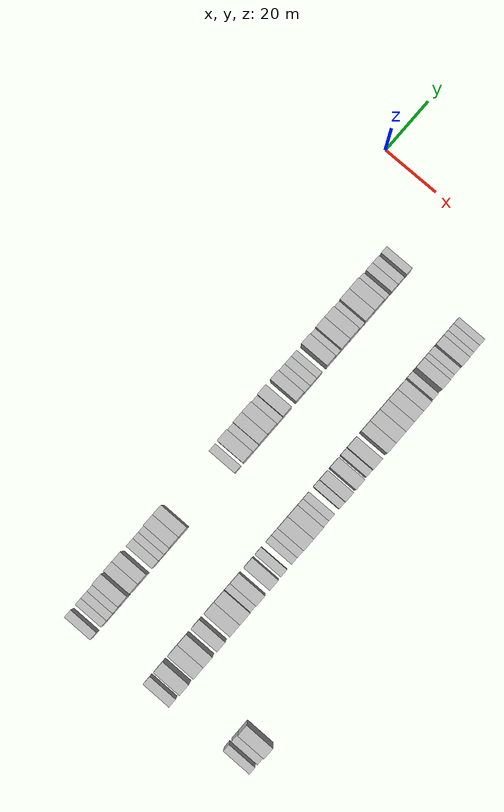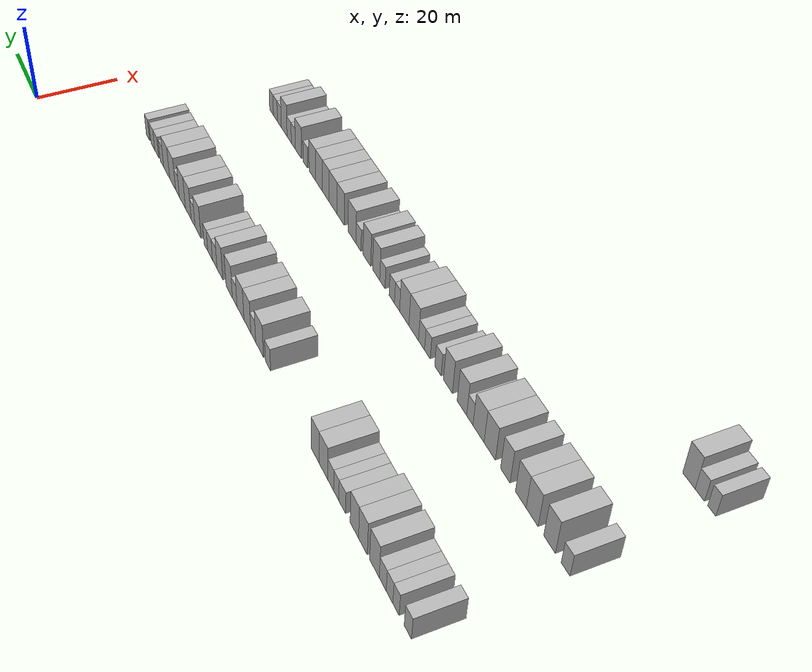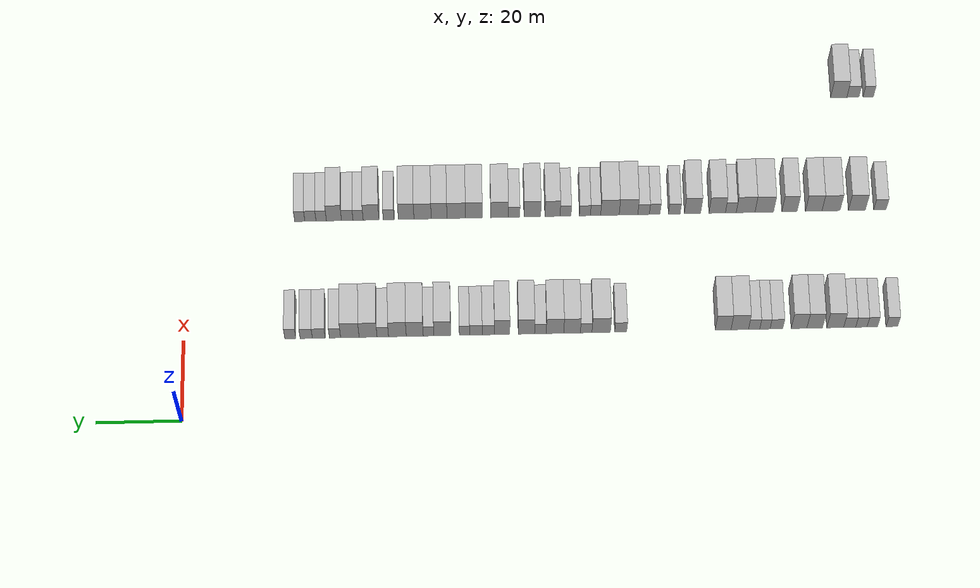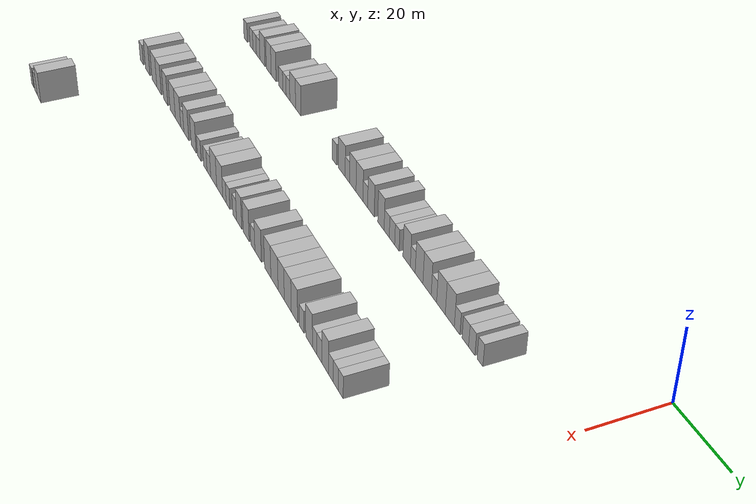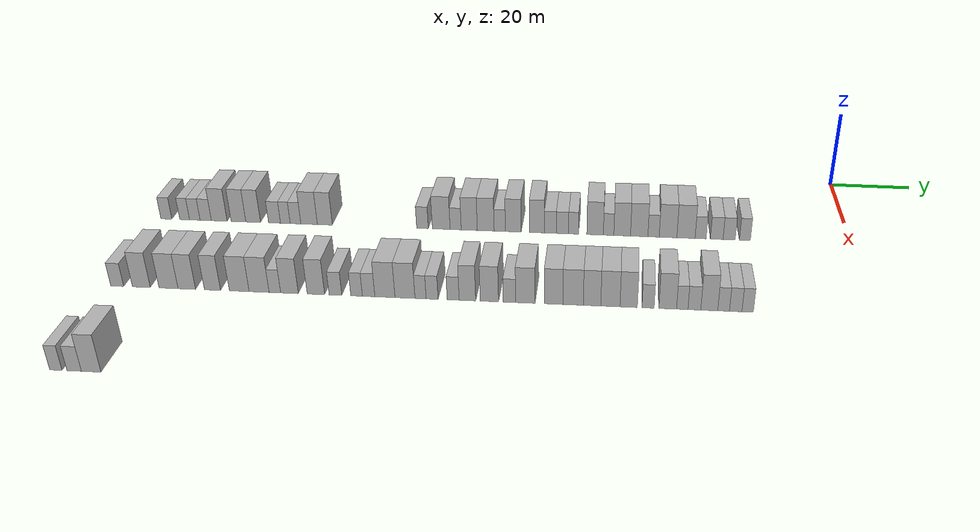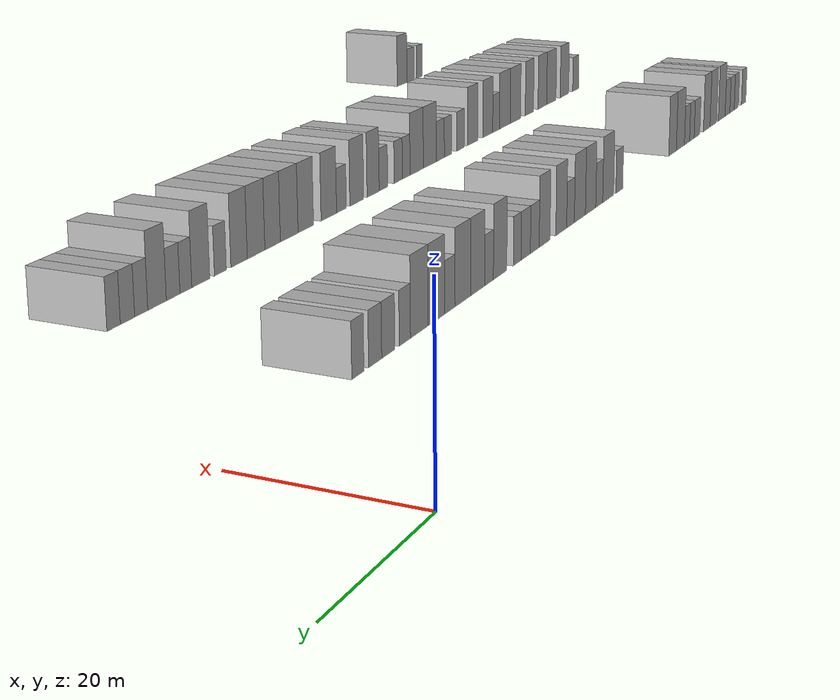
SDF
<sdf version="1.6">
 <world name="default">
  <model name="building_72">
   <static>1</static>
   <pose>25.0000 -166.5571 0 0.000000 0.000000 0.000000</pose>
   <link name="link">
    <pose>0 0 3.00 0 0 0</pose>
    <collision name="collision"><geometry><box><size>10.0000 2.7716 6.0000</size></box></geometry></collision>
    <visual name="visual">
     <cast_shadows>0</cast_shadows>
     <geometry><box><size>10.0000 2.7716 6.0000</size></box></geometry>
     <material>
      <script>
       <uri>model://HANNAS_wall/materials/scripts</uri>
       <uri>model://HANNAS_wall/materials/textures</uri>
       <name>vrc/HANNAS_wall</name>
      </script>
     </material>
    </visual>
   </link>
  </model>
  <model name="building_73">
   <static>1</static>
   <pose>25.0000 -161.9348 0 0.000000 0.000000 0.000000</pose>
   <link name="link">
    <pose>0 0 3.00 0 0 0</pose>
    <collision name="collision"><geometry><box><size>10.0000 2.4730 6.0000</size></box></geometry></collision>
    <visual name="visual">
     <cast_shadows>0</cast_shadows>
     <geometry><box><size>10.0000 2.4730 6.0000</size></box></geometry>
     <material>
      <script>
       <uri>model://HANNAS_wall/materials/scripts</uri>
       <uri>model://HANNAS_wall/materials/textures</uri>
       <name>vrc/HANNAS_wall</name>
      </script>
     </material>
    </visual>
   </link>
  </model>
  <model name="building_74">
   <static>1</static>
   <pose>25.0000 -159.3661 0 0.000000 0.000000 0.000000</pose>
   <link name="link">
    <pose>0 0 3.00 0 0 0</pose>
    <collision name="collision"><geometry><box><size>10.0000 2.6644 6.0000</size></box></geometry></collision>
    <visual name="visual">
     <cast_shadows>0</cast_shadows>
     <geometry><box><size>10.0000 2.6644 6.0000</size></box></geometry>
     <material>
      <script>
       <uri>model://HANNAS_wall/materials/scripts</uri>
       <uri>model://HANNAS_wall/materials/textures</uri>
       <name>vrc/HANNAS_wall</name>
      </script>
     </material>
    </visual>
   </link>
  </model>
  <model name="building_75">
   <static>1</static>
   <pose>25.0000 -156.6147 0 0.000000 0.000000 0.000000</pose>
   <link name="link">
    <pose>0 0 3.00 0 0 0</pose>
    <collision name="collision"><geometry><box><size>10.0000 2.8384 6.0000</size></box></geometry></collision>
    <visual name="visual">
     <cast_shadows>0</cast_shadows>
     <geometry><box><size>10.0000 2.8384 6.0000</size></box></geometry>
     <material>
      <script>
       <uri>model://HANNAS_wall/materials/scripts</uri>
       <uri>model://HANNAS_wall/materials/textures</uri>
       <name>vrc/HANNAS_wall</name>
      </script>
     </material>
    </visual>
   </link>
  </model>
  <model name="building_76">
   <static>1</static>
   <pose>25.0000 -153.2039 0 0.000000 0.000000 0.000000</pose>
   <link name="link">
    <pose>0 0 4.50 0 0 0</pose>
    <collision name="collision"><geometry><box><size>10.0000 3.9831 9.0000</size></box></geometry></collision>
    <visual name="visual">
     <cast_shadows>0</cast_shadows>
     <geometry><box><size>10.0000 3.9831 9.0000</size></box></geometry>
     <material>
      <script>
       <uri>model://HANNAS_wall/materials/scripts</uri>
       <uri>model://HANNAS_wall/materials/textures</uri>
       <name>vrc/HANNAS_wall</name>
      </script>
     </material>
    </visual>
   </link>
  </model>
  <model name="building_77">
   <static>1</static>
   <pose>25.0000 -148.3667 0 0.000000 0.000000 0.000000</pose>
   <link name="link">
    <pose>0 0 4.50 0 0 0</pose>
    <collision name="collision"><geometry><box><size>10.0000 3.6914 9.0000</size></box></geometry></collision>
    <visual name="visual">
     <cast_shadows>0</cast_shadows>
     <geometry><box><size>10.0000 3.6914 9.0000</size></box></geometry>
     <material>
      <script>
       <uri>model://HANNAS_wall/materials/scripts</uri>
       <uri>model://HANNAS_wall/materials/textures</uri>
       <name>vrc/HANNAS_wall</name>
      </script>
     </material>
    </visual>
   </link>
  </model>
  <model name="building_78">
   <static>1</static>
   <pose>25.0000 -144.6795 0 0.000000 0.000000 0.000000</pose>
   <link name="link">
    <pose>0 0 4.50 0 0 0</pose>
    <collision name="collision"><geometry><box><size>10.0000 3.6830 9.0000</size></box></geometry></collision>
    <visual name="visual">
     <cast_shadows>0</cast_shadows>
     <geometry><box><size>10.0000 3.6830 9.0000</size></box></geometry>
     <material>
      <script>
       <uri>model://HANNAS_wall/materials/scripts</uri>
       <uri>model://HANNAS_wall/materials/textures</uri>
       <name>vrc/HANNAS_wall</name>
      </script>
     </material>
    </visual>
   </link>
  </model>
  <model name="building_79">
   <static>1</static>
   <pose>25.0000 -139.3445 0 0.000000 0.000000 0.000000</pose>
   <link name="link">
    <pose>0 0 3.00 0 0 0</pose>
    <collision name="collision"><geometry><box><size>10.0000 2.9870 6.0000</size></box></geometry></collision>
    <visual name="visual">
     <cast_shadows>0</cast_shadows>
     <geometry><box><size>10.0000 2.9870 6.0000</size></box></geometry>
     <material>
      <script>
       <uri>model://HANNAS_wall/materials/scripts</uri>
       <uri>model://HANNAS_wall/materials/textures</uri>
       <name>vrc/HANNAS_wall</name>
      </script>
     </material>
    </visual>
   </link>
  </model>
  <model name="building_80">
   <static>1</static>
   <pose>25.0000 -136.6400 0 0.000000 0.000000 0.000000</pose>
   <link name="link">
    <pose>0 0 3.00 0 0 0</pose>
    <collision name="collision"><geometry><box><size>10.0000 2.4220 6.0000</size></box></geometry></collision>
    <visual name="visual">
     <cast_shadows>0</cast_shadows>
     <geometry><box><size>10.0000 2.4220 6.0000</size></box></geometry>
     <material>
      <script>
       <uri>model://HANNAS_wall/materials/scripts</uri>
       <uri>model://HANNAS_wall/materials/textures</uri>
       <name>vrc/HANNAS_wall</name>
      </script>
     </material>
    </visual>
   </link>
  </model>
  <model name="building_81">
   <static>1</static>
   <pose>25.0000 -134.1019 0 0.000000 0.000000 0.000000</pose>
   <link name="link">
    <pose>0 0 3.00 0 0 0</pose>
    <collision name="collision"><geometry><box><size>10.0000 2.6541 6.0000</size></box></geometry></collision>
    <visual name="visual">
     <cast_shadows>0</cast_shadows>
     <geometry><box><size>10.0000 2.6541 6.0000</size></box></geometry>
     <material>
      <script>
       <uri>model://HANNAS_wall/materials/scripts</uri>
       <uri>model://HANNAS_wall/materials/textures</uri>
       <name>vrc/HANNAS_wall</name>
      </script>
     </material>
    </visual>
   </link>
  </model>
  <model name="building_82">
   <static>1</static>
   <pose>25.0000 -130.7191 0 0.000000 0.000000 0.000000</pose>
   <link name="link">
    <pose>0 0 4.50 0 0 0</pose>
    <collision name="collision"><geometry><box><size>10.0000 4.1116 9.0000</size></box></geometry></collision>
    <visual name="visual">
     <cast_shadows>0</cast_shadows>
     <geometry><box><size>10.0000 4.1116 9.0000</size></box></geometry>
     <material>
      <script>
       <uri>model://HANNAS_wall/materials/scripts</uri>
       <uri>model://HANNAS_wall/materials/textures</uri>
       <name>vrc/HANNAS_wall</name>
      </script>
     </material>
    </visual>
   </link>
  </model>
  <model name="building_83">
   <static>1</static>
   <pose>25.0000 -126.7990 0 0.000000 0.000000 0.000000</pose>
   <link name="link">
    <pose>0 0 4.50 0 0 0</pose>
    <collision name="collision"><geometry><box><size>10.0000 3.7284 9.0000</size></box></geometry></collision>
    <visual name="visual">
     <cast_shadows>0</cast_shadows>
     <geometry><box><size>10.0000 3.7284 9.0000</size></box></geometry>
     <material>
      <script>
       <uri>model://HANNAS_wall/materials/scripts</uri>
       <uri>model://HANNAS_wall/materials/textures</uri>
       <name>vrc/HANNAS_wall</name>
      </script>
     </material>
    </visual>
   </link>
  </model>
  <model name="building_84">
   <static>1</static>
   <pose>25.0000 -102.6723 0 0.000000 0.000000 0.000000</pose>
   <link name="link">
    <pose>0 0 3.00 0 0 0</pose>
    <collision name="collision"><geometry><box><size>10.0000 2.8417 6.0000</size></box></geometry></collision>
    <visual name="visual">
     <cast_shadows>0</cast_shadows>
     <geometry><box><size>10.0000 2.8417 6.0000</size></box></geometry>
     <material>
      <script>
       <uri>model://HANNAS_wall/materials/scripts</uri>
       <uri>model://HANNAS_wall/materials/textures</uri>
       <name>vrc/HANNAS_wall</name>
      </script>
     </material>
    </visual>
   </link>
  </model>
  <model name="building_85">
   <static>1</static>
   <pose>25.0000 -98.0793 0 0.000000 0.000000 0.000000</pose>
   <link name="link">
    <pose>0 0 4.50 0 0 0</pose>
    <collision name="collision"><geometry><box><size>10.0000 4.3443 9.0000</size></box></geometry></collision>
    <visual name="visual">
     <cast_shadows>0</cast_shadows>
     <geometry><box><size>10.0000 4.3443 9.0000</size></box></geometry>
     <material>
      <script>
       <uri>model://HANNAS_wall/materials/scripts</uri>
       <uri>model://HANNAS_wall/materials/textures</uri>
       <name>vrc/HANNAS_wall</name>
      </script>
     </material>
    </visual>
   </link>
  </model>
  <model name="building_86">
   <static>1</static>
   <pose>25.0000 -94.5464 0 0.000000 0.000000 0.000000</pose>
   <link name="link">
    <pose>0 0 3.00 0 0 0</pose>
    <collision name="collision"><geometry><box><size>10.0000 2.7215 6.0000</size></box></geometry></collision>
    <visual name="visual">
     <cast_shadows>0</cast_shadows>
     <geometry><box><size>10.0000 2.7215 6.0000</size></box></geometry>
     <material>
      <script>
       <uri>model://HANNAS_wall/materials/scripts</uri>
       <uri>model://HANNAS_wall/materials/textures</uri>
       <name>vrc/HANNAS_wall</name>
      </script>
     </material>
    </visual>
   </link>
  </model>
  <model name="building_87">
   <static>1</static>
   <pose>25.0000 -91.2247 0 0.000000 0.000000 0.000000</pose>
   <link name="link">
    <pose>0 0 4.50 0 0 0</pose>
    <collision name="collision"><geometry><box><size>10.0000 3.9218 9.0000</size></box></geometry></collision>
    <visual name="visual">
     <cast_shadows>0</cast_shadows>
     <geometry><box><size>10.0000 3.9218 9.0000</size></box></geometry>
     <material>
      <script>
       <uri>model://HANNAS_wall/materials/scripts</uri>
       <uri>model://HANNAS_wall/materials/textures</uri>
       <name>vrc/HANNAS_wall</name>
      </script>
     </material>
    </visual>
   </link>
  </model>
  <model name="building_88">
   <static>1</static>
   <pose>25.0000 -87.2081 0 0.000000 0.000000 0.000000</pose>
   <link name="link">
    <pose>0 0 4.50 0 0 0</pose>
    <collision name="collision"><geometry><box><size>10.0000 4.1115 9.0000</size></box></geometry></collision>
    <visual name="visual">
     <cast_shadows>0</cast_shadows>
     <geometry><box><size>10.0000 4.1115 9.0000</size></box></geometry>
     <material>
      <script>
       <uri>model://HANNAS_wall/materials/scripts</uri>
       <uri>model://HANNAS_wall/materials/textures</uri>
       <name>vrc/HANNAS_wall</name>
      </script>
     </material>
    </visual>
   </link>
  </model>
  <model name="building_89">
   <static>1</static>
   <pose>25.0000 -83.7811 0 0.000000 0.000000 0.000000</pose>
   <link name="link">
    <pose>0 0 3.00 0 0 0</pose>
    <collision name="collision"><geometry><box><size>10.0000 2.7424 6.0000</size></box></geometry></collision>
    <visual name="visual">
     <cast_shadows>0</cast_shadows>
     <geometry><box><size>10.0000 2.7424 6.0000</size></box></geometry>
     <material>
      <script>
       <uri>model://HANNAS_wall/materials/scripts</uri>
       <uri>model://HANNAS_wall/materials/textures</uri>
       <name>vrc/HANNAS_wall</name>
      </script>
     </material>
    </visual>
   </link>
  </model>
  <model name="building_90">
   <static>1</static>
   <pose>25.0000 -80.4978 0 0.000000 0.000000 0.000000</pose>
   <link name="link">
    <pose>0 0 4.50 0 0 0</pose>
    <collision name="collision"><geometry><box><size>10.0000 3.8243 9.0000</size></box></geometry></collision>
    <visual name="visual">
     <cast_shadows>0</cast_shadows>
     <geometry><box><size>10.0000 3.8243 9.0000</size></box></geometry>
     <material>
      <script>
       <uri>model://HANNAS_wall/materials/scripts</uri>
       <uri>model://HANNAS_wall/materials/textures</uri>
       <name>vrc/HANNAS_wall</name>
      </script>
     </material>
    </visual>
   </link>
  </model>
  <model name="building_91">
   <static>1</static>
   <pose>25.0000 -74.7809 0 0.000000 0.000000 0.000000</pose>
   <link name="link">
    <pose>0 0 4.50 0 0 0</pose>
    <collision name="collision"><geometry><box><size>10.0000 3.6095 9.0000</size></box></geometry></collision>
    <visual name="visual">
     <cast_shadows>0</cast_shadows>
     <geometry><box><size>10.0000 3.6095 9.0000</size></box></geometry>
     <material>
      <script>
       <uri>model://HANNAS_wall/materials/scripts</uri>
       <uri>model://HANNAS_wall/materials/textures</uri>
       <name>vrc/HANNAS_wall</name>
      </script>
     </material>
    </visual>
   </link>
  </model>
  <model name="building_92">
   <static>1</static>
   <pose>25.0000 -71.5406 0 0.000000 0.000000 0.000000</pose>
   <link name="link">
    <pose>0 0 3.00 0 0 0</pose>
    <collision name="collision"><geometry><box><size>10.0000 2.8711 6.0000</size></box></geometry></collision>
    <visual name="visual">
     <cast_shadows>0</cast_shadows>
     <geometry><box><size>10.0000 2.8711 6.0000</size></box></geometry>
     <material>
      <script>
       <uri>model://HANNAS_wall/materials/scripts</uri>
       <uri>model://HANNAS_wall/materials/textures</uri>
       <name>vrc/HANNAS_wall</name>
      </script>
     </material>
    </visual>
   </link>
  </model>
  <model name="building_93">
   <static>1</static>
   <pose>25.0000 -68.6193 0 0.000000 0.000000 0.000000</pose>
   <link name="link">
    <pose>0 0 3.00 0 0 0</pose>
    <collision name="collision"><geometry><box><size>10.0000 2.9713 6.0000</size></box></geometry></collision>
    <visual name="visual">
     <cast_shadows>0</cast_shadows>
     <geometry><box><size>10.0000 2.9713 6.0000</size></box></geometry>
     <material>
      <script>
       <uri>model://HANNAS_wall/materials/scripts</uri>
       <uri>model://HANNAS_wall/materials/textures</uri>
       <name>vrc/HANNAS_wall</name>
      </script>
     </material>
    </visual>
   </link>
  </model>
  <model name="building_94">
   <static>1</static>
   <pose>25.0000 -65.9273 0 0.000000 0.000000 0.000000</pose>
   <link name="link">
    <pose>0 0 3.00 0 0 0</pose>
    <collision name="collision"><geometry><box><size>10.0000 2.4127 6.0000</size></box></geometry></collision>
    <visual name="visual">
     <cast_shadows>0</cast_shadows>
     <geometry><box><size>10.0000 2.4127 6.0000</size></box></geometry>
     <material>
      <script>
       <uri>model://HANNAS_wall/materials/scripts</uri>
       <uri>model://HANNAS_wall/materials/textures</uri>
       <name>vrc/HANNAS_wall</name>
      </script>
     </material>
    </visual>
   </link>
  </model>
  <model name="building_95">
   <static>1</static>
   <pose>25.0000 -60.7367 0 0.000000 0.000000 0.000000</pose>
   <link name="link">
    <pose>0 0 4.50 0 0 0</pose>
    <collision name="collision"><geometry><box><size>10.0000 3.9686 9.0000</size></box></geometry></collision>
    <visual name="visual">
     <cast_shadows>0</cast_shadows>
     <geometry><box><size>10.0000 3.9686 9.0000</size></box></geometry>
     <material>
      <script>
       <uri>model://HANNAS_wall/materials/scripts</uri>
       <uri>model://HANNAS_wall/materials/textures</uri>
       <name>vrc/HANNAS_wall</name>
      </script>
     </material>
    </visual>
   </link>
  </model>
  <model name="building_96">
   <static>1</static>
   <pose>25.0000 -57.4942 0 0.000000 0.000000 0.000000</pose>
   <link name="link">
    <pose>0 0 3.00 0 0 0</pose>
    <collision name="collision"><geometry><box><size>10.0000 2.5164 6.0000</size></box></geometry></collision>
    <visual name="visual">
     <cast_shadows>0</cast_shadows>
     <geometry><box><size>10.0000 2.5164 6.0000</size></box></geometry>
     <material>
      <script>
       <uri>model://HANNAS_wall/materials/scripts</uri>
       <uri>model://HANNAS_wall/materials/textures</uri>
       <name>vrc/HANNAS_wall</name>
      </script>
     </material>
    </visual>
   </link>
  </model>
  <model name="building_97">
   <static>1</static>
   <pose>25.0000 -54.2413 0 0.000000 0.000000 0.000000</pose>
   <link name="link">
    <pose>0 0 4.50 0 0 0</pose>
    <collision name="collision"><geometry><box><size>10.0000 3.9895 9.0000</size></box></geometry></collision>
    <visual name="visual">
     <cast_shadows>0</cast_shadows>
     <geometry><box><size>10.0000 3.9895 9.0000</size></box></geometry>
     <material>
      <script>
       <uri>model://HANNAS_wall/materials/scripts</uri>
       <uri>model://HANNAS_wall/materials/textures</uri>
       <name>vrc/HANNAS_wall</name>
      </script>
     </material>
    </visual>
   </link>
  </model>
  <model name="building_98">
   <static>1</static>
   <pose>25.0000 -50.1621 0 0.000000 0.000000 0.000000</pose>
   <link name="link">
    <pose>0 0 4.50 0 0 0</pose>
    <collision name="collision"><geometry><box><size>10.0000 4.1689 9.0000</size></box></geometry></collision>
    <visual name="visual">
     <cast_shadows>0</cast_shadows>
     <geometry><box><size>10.0000 4.1689 9.0000</size></box></geometry>
     <material>
      <script>
       <uri>model://HANNAS_wall/materials/scripts</uri>
       <uri>model://HANNAS_wall/materials/textures</uri>
       <name>vrc/HANNAS_wall</name>
      </script>
     </material>
    </visual>
   </link>
  </model>
  <model name="building_99">
   <static>1</static>
   <pose>25.0000 -46.7278 0 0.000000 0.000000 0.000000</pose>
   <link name="link">
    <pose>0 0 3.00 0 0 0</pose>
    <collision name="collision"><geometry><box><size>10.0000 2.6997 6.0000</size></box></geometry></collision>
    <visual name="visual">
     <cast_shadows>0</cast_shadows>
     <geometry><box><size>10.0000 2.6997 6.0000</size></box></geometry>
     <material>
      <script>
       <uri>model://HANNAS_wall/materials/scripts</uri>
       <uri>model://HANNAS_wall/materials/textures</uri>
       <name>vrc/HANNAS_wall</name>
      </script>
     </material>
    </visual>
   </link>
  </model>
  <model name="building_100">
   <static>1</static>
   <pose>25.0000 -43.2693 0 0.000000 0.000000 0.000000</pose>
   <link name="link">
    <pose>0 0 4.50 0 0 0</pose>
    <collision name="collision"><geometry><box><size>10.0000 4.2172 9.0000</size></box></geometry></collision>
    <visual name="visual">
     <cast_shadows>0</cast_shadows>
     <geometry><box><size>10.0000 4.2172 9.0000</size></box></geometry>
     <material>
      <script>
       <uri>model://HANNAS_wall/materials/scripts</uri>
       <uri>model://HANNAS_wall/materials/textures</uri>
       <name>vrc/HANNAS_wall</name>
      </script>
     </material>
    </visual>
   </link>
  </model>
  <model name="building_101">
   <static>1</static>
   <pose>25.0000 -38.9895 0 0.000000 0.000000 0.000000</pose>
   <link name="link">
    <pose>0 0 4.50 0 0 0</pose>
    <collision name="collision"><geometry><box><size>10.0000 4.3423 9.0000</size></box></geometry></collision>
    <visual name="visual">
     <cast_shadows>0</cast_shadows>
     <geometry><box><size>10.0000 4.3423 9.0000</size></box></geometry>
     <material>
      <script>
       <uri>model://HANNAS_wall/materials/scripts</uri>
       <uri>model://HANNAS_wall/materials/textures</uri>
       <name>vrc/HANNAS_wall</name>
      </script>
     </material>
    </visual>
   </link>
  </model>
  <model name="building_102">
   <static>1</static>
   <pose>25.0000 -35.5010 0 0.000000 0.000000 0.000000</pose>
   <link name="link">
    <pose>0 0 3.00 0 0 0</pose>
    <collision name="collision"><geometry><box><size>10.0000 2.6348 6.0000</size></box></geometry></collision>
    <visual name="visual">
     <cast_shadows>0</cast_shadows>
     <geometry><box><size>10.0000 2.6348 6.0000</size></box></geometry>
     <material>
      <script>
       <uri>model://HANNAS_wall/materials/scripts</uri>
       <uri>model://HANNAS_wall/materials/textures</uri>
       <name>vrc/HANNAS_wall</name>
      </script>
     </material>
    </visual>
   </link>
  </model>
  <model name="building_103">
   <static>1</static>
   <pose>25.0000 -31.6841 0 0.000000 0.000000 0.000000</pose>
   <link name="link">
    <pose>0 0 3.00 0 0 0</pose>
    <collision name="collision"><geometry><box><size>10.0000 2.9989 6.0000</size></box></geometry></collision>
    <visual name="visual">
     <cast_shadows>0</cast_shadows>
     <geometry><box><size>10.0000 2.9989 6.0000</size></box></geometry>
     <material>
      <script>
       <uri>model://HANNAS_wall/materials/scripts</uri>
       <uri>model://HANNAS_wall/materials/textures</uri>
       <name>vrc/HANNAS_wall</name>
      </script>
     </material>
    </visual>
   </link>
  </model>
  <model name="building_104">
   <static>1</static>
   <pose>25.0000 -28.7432 0 0.000000 0.000000 0.000000</pose>
   <link name="link">
    <pose>0 0 3.00 0 0 0</pose>
    <collision name="collision"><geometry><box><size>10.0000 2.8830 6.0000</size></box></geometry></collision>
    <visual name="visual">
     <cast_shadows>0</cast_shadows>
     <geometry><box><size>10.0000 2.8830 6.0000</size></box></geometry>
     <material>
      <script>
       <uri>model://HANNAS_wall/materials/scripts</uri>
       <uri>model://HANNAS_wall/materials/textures</uri>
       <name>vrc/HANNAS_wall</name>
      </script>
     </material>
    </visual>
   </link>
  </model>
  <model name="building_105">
   <static>1</static>
   <pose>25.0000 -25.0118 0 0.000000 0.000000 0.000000</pose>
   <link name="link">
    <pose>0 0 3.00 0 0 0</pose>
    <collision name="collision"><geometry><box><size>10.0000 2.5798 6.0000</size></box></geometry></collision>
    <visual name="visual">
     <cast_shadows>0</cast_shadows>
     <geometry><box><size>10.0000 2.5798 6.0000</size></box></geometry>
     <material>
      <script>
       <uri>model://HANNAS_wall/materials/scripts</uri>
       <uri>model://HANNAS_wall/materials/textures</uri>
       <name>vrc/HANNAS_wall</name>
      </script>
     </material>
    </visual>
   </link>
  </model>
  <model name="building_300">
   <static>1</static>
   <pose>55.0000 -165.9658 0 0.000000 0.000000 0.000000</pose>
   <link name="link">
    <pose>0 0 3.00 0 0 0</pose>
    <collision name="collision"><geometry><box><size>10.0000 2.9714 6.0000</size></box></geometry></collision>
    <visual name="visual">
     <cast_shadows>0</cast_shadows>
     <geometry><box><size>10.0000 2.9714 6.0000</size></box></geometry>
     <material>
      <script>
       <uri>model://HANNAS_wall/materials/scripts</uri>
       <uri>model://HANNAS_wall/materials/textures</uri>
       <name>vrc/HANNAS_wall</name>
      </script>
     </material>
    </visual>
   </link>
  </model>
  <model name="building_301">
   <static>1</static>
   <pose>55.0000 -160.4457 0 0.000000 0.000000 0.000000</pose>
   <link name="link">
    <pose>0 0 4.50 0 0 0</pose>
    <collision name="collision"><geometry><box><size>10.0000 4.0690 9.0000</size></box></geometry></collision>
    <visual name="visual">
     <cast_shadows>0</cast_shadows>
     <geometry><box><size>10.0000 4.0690 9.0000</size></box></geometry>
     <material>
      <script>
       <uri>model://HANNAS_wall/materials/scripts</uri>
       <uri>model://HANNAS_wall/materials/textures</uri>
       <name>vrc/HANNAS_wall</name>
      </script>
     </material>
    </visual>
   </link>
  </model>
  <model name="building_302">
   <static>1</static>
   <pose>55.0000 -154.2493 0 0.000000 0.000000 0.000000</pose>
   <link name="link">
    <pose>0 0 4.50 0 0 0</pose>
    <collision name="collision"><geometry><box><size>10.0000 4.3237 9.0000</size></box></geometry></collision>
    <visual name="visual">
     <cast_shadows>0</cast_shadows>
     <geometry><box><size>10.0000 4.3237 9.0000</size></box></geometry>
     <material>
      <script>
       <uri>model://HANNAS_wall/materials/scripts</uri>
       <uri>model://HANNAS_wall/materials/textures</uri>
       <name>vrc/HANNAS_wall</name>
      </script>
     </material>
    </visual>
   </link>
  </model>
  <model name="building_303">
   <static>1</static>
   <pose>55.0000 -150.1040 0 0.000000 0.000000 0.000000</pose>
   <link name="link">
    <pose>0 0 4.50 0 0 0</pose>
    <collision name="collision"><geometry><box><size>10.0000 3.9669 9.0000</size></box></geometry></collision>
    <visual name="visual">
     <cast_shadows>0</cast_shadows>
     <geometry><box><size>10.0000 3.9669 9.0000</size></box></geometry>
     <material>
      <script>
       <uri>model://HANNAS_wall/materials/scripts</uri>
       <uri>model://HANNAS_wall/materials/textures</uri>
       <name>vrc/HANNAS_wall</name>
      </script>
     </material>
    </visual>
   </link>
  </model>
  <model name="building_304">
   <static>1</static>
   <pose>55.0000 -144.2978 0 0.000000 0.000000 0.000000</pose>
   <link name="link">
    <pose>0 0 4.50 0 0 0</pose>
    <collision name="collision"><geometry><box><size>10.0000 3.6456 9.0000</size></box></geometry></collision>
    <visual name="visual">
     <cast_shadows>0</cast_shadows>
     <geometry><box><size>10.0000 3.6456 9.0000</size></box></geometry>
     <material>
      <script>
       <uri>model://HANNAS_wall/materials/scripts</uri>
       <uri>model://HANNAS_wall/materials/textures</uri>
       <name>vrc/HANNAS_wall</name>
      </script>
     </material>
    </visual>
   </link>
  </model>
  <model name="building_305">
   <static>1</static>
   <pose>55.0000 -138.2495 0 0.000000 0.000000 0.000000</pose>
   <link name="link">
    <pose>0 0 4.50 0 0 0</pose>
    <collision name="collision"><geometry><box><size>10.0000 4.4509 9.0000</size></box></geometry></collision>
    <visual name="visual">
     <cast_shadows>0</cast_shadows>
     <geometry><box><size>10.0000 4.4509 9.0000</size></box></geometry>
     <material>
      <script>
       <uri>model://HANNAS_wall/materials/scripts</uri>
       <uri>model://HANNAS_wall/materials/textures</uri>
       <name>vrc/HANNAS_wall</name>
      </script>
     </material>
    </visual>
   </link>
  </model>
  <model name="building_306">
   <static>1</static>
   <pose>55.0000 -133.7833 0 0.000000 0.000000 0.000000</pose>
   <link name="link">
    <pose>0 0 4.50 0 0 0</pose>
    <collision name="collision"><geometry><box><size>10.0000 4.4816 9.0000</size></box></geometry></collision>
    <visual name="visual">
     <cast_shadows>0</cast_shadows>
     <geometry><box><size>10.0000 4.4816 9.0000</size></box></geometry>
     <material>
      <script>
       <uri>model://HANNAS_wall/materials/scripts</uri>
       <uri>model://HANNAS_wall/materials/textures</uri>
       <name>vrc/HANNAS_wall</name>
      </script>
     </material>
    </visual>
   </link>
  </model>
  <model name="building_307">
   <static>1</static>
   <pose>55.0000 -130.2400 0 0.000000 0.000000 0.000000</pose>
   <link name="link">
    <pose>0 0 3.00 0 0 0</pose>
    <collision name="collision"><geometry><box><size>10.0000 2.6049 6.0000</size></box></geometry></collision>
    <visual name="visual">
     <cast_shadows>0</cast_shadows>
     <geometry><box><size>10.0000 2.6049 6.0000</size></box></geometry>
     <material>
      <script>
       <uri>model://HANNAS_wall/materials/scripts</uri>
       <uri>model://HANNAS_wall/materials/textures</uri>
       <name>vrc/HANNAS_wall</name>
      </script>
     </material>
    </visual>
   </link>
  </model>
  <model name="building_308">
   <static>1</static>
   <pose>55.0000 -126.9658 0 0.000000 0.000000 0.000000</pose>
   <link name="link">
    <pose>0 0 4.50 0 0 0</pose>
    <collision name="collision"><geometry><box><size>10.0000 3.9435 9.0000</size></box></geometry></collision>
    <visual name="visual">
     <cast_shadows>0</cast_shadows>
     <geometry><box><size>10.0000 3.9435 9.0000</size></box></geometry>
     <material>
      <script>
       <uri>model://HANNAS_wall/materials/scripts</uri>
       <uri>model://HANNAS_wall/materials/textures</uri>
       <name>vrc/HANNAS_wall</name>
      </script>
     </material>
    </visual>
   </link>
  </model>
  <model name="building_309">
   <static>1</static>
   <pose>55.0000 -121.0502 0 0.000000 0.000000 0.000000</pose>
   <link name="link">
    <pose>0 0 4.50 0 0 0</pose>
    <collision name="collision"><geometry><box><size>10.0000 3.8877 9.0000</size></box></geometry></collision>
    <visual name="visual">
     <cast_shadows>0</cast_shadows>
     <geometry><box><size>10.0000 3.8877 9.0000</size></box></geometry>
     <material>
      <script>
       <uri>model://HANNAS_wall/materials/scripts</uri>
       <uri>model://HANNAS_wall/materials/textures</uri>
       <name>vrc/HANNAS_wall</name>
      </script>
     </material>
    </visual>
   </link>
  </model>
  <model name="building_310">
   <static>1</static>
   <pose>55.0000 -116.6937 0 0.000000 0.000000 0.000000</pose>
   <link name="link">
    <pose>0 0 3.00 0 0 0</pose>
    <collision name="collision"><geometry><box><size>10.0000 2.8252 6.0000</size></box></geometry></collision>
    <visual name="visual">
     <cast_shadows>0</cast_shadows>
     <geometry><box><size>10.0000 2.8252 6.0000</size></box></geometry>
     <material>
      <script>
       <uri>model://HANNAS_wall/materials/scripts</uri>
       <uri>model://HANNAS_wall/materials/textures</uri>
       <name>vrc/HANNAS_wall</name>
      </script>
     </material>
    </visual>
   </link>
  </model>
  <model name="building_311">
   <static>1</static>
   <pose>55.0000 -111.9999 0 0.000000 0.000000 0.000000</pose>
   <link name="link">
    <pose>0 0 3.00 0 0 0</pose>
    <collision name="collision"><geometry><box><size>10.0000 2.5624 6.0000</size></box></geometry></collision>
    <visual name="visual">
     <cast_shadows>0</cast_shadows>
     <geometry><box><size>10.0000 2.5624 6.0000</size></box></geometry>
     <material>
      <script>
       <uri>model://HANNAS_wall/materials/scripts</uri>
       <uri>model://HANNAS_wall/materials/textures</uri>
       <name>vrc/HANNAS_wall</name>
      </script>
     </material>
    </visual>
   </link>
  </model>
  <model name="building_312">
   <static>1</static>
   <pose>55.0000 -109.3338 0 0.000000 0.000000 0.000000</pose>
   <link name="link">
    <pose>0 0 3.00 0 0 0</pose>
    <collision name="collision"><geometry><box><size>10.0000 2.7698 6.0000</size></box></geometry></collision>
    <visual name="visual">
     <cast_shadows>0</cast_shadows>
     <geometry><box><size>10.0000 2.7698 6.0000</size></box></geometry>
     <material>
      <script>
       <uri>model://HANNAS_wall/materials/scripts</uri>
       <uri>model://HANNAS_wall/materials/textures</uri>
       <name>vrc/HANNAS_wall</name>
      </script>
     </material>
    </visual>
   </link>
  </model>
  <model name="building_313">
   <static>1</static>
   <pose>55.0000 -105.7177 0 0.000000 0.000000 0.000000</pose>
   <link name="link">
    <pose>0 0 4.50 0 0 0</pose>
    <collision name="collision"><geometry><box><size>10.0000 4.4625 9.0000</size></box></geometry></collision>
    <visual name="visual">
     <cast_shadows>0</cast_shadows>
     <geometry><box><size>10.0000 4.4625 9.0000</size></box></geometry>
     <material>
      <script>
       <uri>model://HANNAS_wall/materials/scripts</uri>
       <uri>model://HANNAS_wall/materials/textures</uri>
       <name>vrc/HANNAS_wall</name>
      </script>
     </material>
    </visual>
   </link>
  </model>
  <model name="building_314">
   <static>1</static>
   <pose>55.0000 -101.2758 0 0.000000 0.000000 0.000000</pose>
   <link name="link">
    <pose>0 0 4.50 0 0 0</pose>
    <collision name="collision"><geometry><box><size>10.0000 4.4213 9.0000</size></box></geometry></collision>
    <visual name="visual">
     <cast_shadows>0</cast_shadows>
     <geometry><box><size>10.0000 4.4213 9.0000</size></box></geometry>
     <material>
      <script>
       <uri>model://HANNAS_wall/materials/scripts</uri>
       <uri>model://HANNAS_wall/materials/textures</uri>
       <name>vrc/HANNAS_wall</name>
      </script>
     </material>
    </visual>
   </link>
  </model>
  <model name="building_315">
   <static>1</static>
   <pose>55.0000 -97.8367 0 0.000000 0.000000 0.000000</pose>
   <link name="link">
    <pose>0 0 3.00 0 0 0</pose>
    <collision name="collision"><geometry><box><size>10.0000 2.4569 6.0000</size></box></geometry></collision>
    <visual name="visual">
     <cast_shadows>0</cast_shadows>
     <geometry><box><size>10.0000 2.4569 6.0000</size></box></geometry>
     <material>
      <script>
       <uri>model://HANNAS_wall/materials/scripts</uri>
       <uri>model://HANNAS_wall/materials/textures</uri>
       <name>vrc/HANNAS_wall</name>
      </script>
     </material>
    </visual>
   </link>
  </model>
  <model name="building_316">
   <static>1</static>
   <pose>55.0000 -95.2933 0 0.000000 0.000000 0.000000</pose>
   <link name="link">
    <pose>0 0 3.00 0 0 0</pose>
    <collision name="collision"><geometry><box><size>10.0000 2.6299 6.0000</size></box></geometry></collision>
    <visual name="visual">
     <cast_shadows>0</cast_shadows>
     <geometry><box><size>10.0000 2.6299 6.0000</size></box></geometry>
     <material>
      <script>
       <uri>model://HANNAS_wall/materials/scripts</uri>
       <uri>model://HANNAS_wall/materials/textures</uri>
       <name>vrc/HANNAS_wall</name>
      </script>
     </material>
    </visual>
   </link>
  </model>
  <model name="building_317">
   <static>1</static>
   <pose>55.0000 -90.6626 0 0.000000 0.000000 0.000000</pose>
   <link name="link">
    <pose>0 0 3.00 0 0 0</pose>
    <collision name="collision"><geometry><box><size>10.0000 2.6313 6.0000</size></box></geometry></collision>
    <visual name="visual">
     <cast_shadows>0</cast_shadows>
     <geometry><box><size>10.0000 2.6313 6.0000</size></box></geometry>
     <material>
      <script>
       <uri>model://HANNAS_wall/materials/scripts</uri>
       <uri>model://HANNAS_wall/materials/textures</uri>
       <name>vrc/HANNAS_wall</name>
      </script>
     </material>
    </visual>
   </link>
  </model>
  <model name="building_318">
   <static>1</static>
   <pose>55.0000 -87.5331 0 0.000000 0.000000 0.000000</pose>
   <link name="link">
    <pose>0 0 4.50 0 0 0</pose>
    <collision name="collision"><geometry><box><size>10.0000 3.6277 9.0000</size></box></geometry></collision>
    <visual name="visual">
     <cast_shadows>0</cast_shadows>
     <geometry><box><size>10.0000 3.6277 9.0000</size></box></geometry>
     <material>
      <script>
       <uri>model://HANNAS_wall/materials/scripts</uri>
       <uri>model://HANNAS_wall/materials/textures</uri>
       <name>vrc/HANNAS_wall</name>
      </script>
     </material>
    </visual>
   </link>
  </model>
  <model name="building_319">
   <static>1</static>
   <pose>55.0000 -82.7217 0 0.000000 0.000000 0.000000</pose>
   <link name="link">
    <pose>0 0 4.50 0 0 0</pose>
    <collision name="collision"><geometry><box><size>10.0000 3.9952 9.0000</size></box></geometry></collision>
    <visual name="visual">
     <cast_shadows>0</cast_shadows>
     <geometry><box><size>10.0000 3.9952 9.0000</size></box></geometry>
     <material>
      <script>
       <uri>model://HANNAS_wall/materials/scripts</uri>
       <uri>model://HANNAS_wall/materials/textures</uri>
       <name>vrc/HANNAS_wall</name>
      </script>
     </material>
    </visual>
   </link>
  </model>
  <model name="building_320">
   <static>1</static>
   <pose>55.0000 -78.3541 0 0.000000 0.000000 0.000000</pose>
   <link name="link">
    <pose>0 0 3.00 0 0 0</pose>
    <collision name="collision"><geometry><box><size>10.0000 2.7401 6.0000</size></box></geometry></collision>
    <visual name="visual">
     <cast_shadows>0</cast_shadows>
     <geometry><box><size>10.0000 2.7401 6.0000</size></box></geometry>
     <material>
      <script>
       <uri>model://HANNAS_wall/materials/scripts</uri>
       <uri>model://HANNAS_wall/materials/textures</uri>
       <name>vrc/HANNAS_wall</name>
      </script>
     </material>
    </visual>
   </link>
  </model>
  <model name="building_321">
   <static>1</static>
   <pose>55.0000 -74.8721 0 0.000000 0.000000 0.000000</pose>
   <link name="link">
    <pose>0 0 4.50 0 0 0</pose>
    <collision name="collision"><geometry><box><size>10.0000 4.2240 9.0000</size></box></geometry></collision>
    <visual name="visual">
     <cast_shadows>0</cast_shadows>
     <geometry><box><size>10.0000 4.2240 9.0000</size></box></geometry>
     <material>
      <script>
       <uri>model://HANNAS_wall/materials/scripts</uri>
       <uri>model://HANNAS_wall/materials/textures</uri>
       <name>vrc/HANNAS_wall</name>
      </script>
     </material>
    </visual>
   </link>
  </model>
  <model name="building_322">
   <static>1</static>
   <pose>55.0000 -68.7531 0 0.000000 0.000000 0.000000</pose>
   <link name="link">
    <pose>0 0 4.50 0 0 0</pose>
    <collision name="collision"><geometry><box><size>10.0000 4.0139 9.0000</size></box></geometry></collision>
    <visual name="visual">
     <cast_shadows>0</cast_shadows>
     <geometry><box><size>10.0000 4.0139 9.0000</size></box></geometry>
     <material>
      <script>
       <uri>model://HANNAS_wall/materials/scripts</uri>
       <uri>model://HANNAS_wall/materials/textures</uri>
       <name>vrc/HANNAS_wall</name>
      </script>
     </material>
    </visual>
   </link>
  </model>
  <model name="building_323">
   <static>1</static>
   <pose>55.0000 -64.5259 0 0.000000 0.000000 0.000000</pose>
   <link name="link">
    <pose>0 0 4.50 0 0 0</pose>
    <collision name="collision"><geometry><box><size>10.0000 4.4404 9.0000</size></box></geometry></collision>
    <visual name="visual">
     <cast_shadows>0</cast_shadows>
     <geometry><box><size>10.0000 4.4404 9.0000</size></box></geometry>
     <material>
      <script>
       <uri>model://HANNAS_wall/materials/scripts</uri>
       <uri>model://HANNAS_wall/materials/textures</uri>
       <name>vrc/HANNAS_wall</name>
      </script>
     </material>
    </visual>
   </link>
  </model>
  <model name="building_324">
   <static>1</static>
   <pose>55.0000 -60.4232 0 0.000000 0.000000 0.000000</pose>
   <link name="link">
    <pose>0 0 4.50 0 0 0</pose>
    <collision name="collision"><geometry><box><size>10.0000 3.7650 9.0000</size></box></geometry></collision>
    <visual name="visual">
     <cast_shadows>0</cast_shadows>
     <geometry><box><size>10.0000 3.7650 9.0000</size></box></geometry>
     <material>
      <script>
       <uri>model://HANNAS_wall/materials/scripts</uri>
       <uri>model://HANNAS_wall/materials/textures</uri>
       <name>vrc/HANNAS_wall</name>
      </script>
     </material>
    </visual>
   </link>
  </model>
  <model name="building_325">
   <static>1</static>
   <pose>55.0000 -56.4733 0 0.000000 0.000000 0.000000</pose>
   <link name="link">
    <pose>0 0 4.50 0 0 0</pose>
    <collision name="collision"><geometry><box><size>10.0000 4.1348 9.0000</size></box></geometry></collision>
    <visual name="visual">
     <cast_shadows>0</cast_shadows>
     <geometry><box><size>10.0000 4.1348 9.0000</size></box></geometry>
     <material>
      <script>
       <uri>model://HANNAS_wall/materials/scripts</uri>
       <uri>model://HANNAS_wall/materials/textures</uri>
       <name>vrc/HANNAS_wall</name>
      </script>
     </material>
    </visual>
   </link>
  </model>
  <model name="building_326">
   <static>1</static>
   <pose>55.0000 -52.5371 0 0.000000 0.000000 0.000000</pose>
   <link name="link">
    <pose>0 0 4.50 0 0 0</pose>
    <collision name="collision"><geometry><box><size>10.0000 3.7377 9.0000</size></box></geometry></collision>
    <visual name="visual">
     <cast_shadows>0</cast_shadows>
     <geometry><box><size>10.0000 3.7377 9.0000</size></box></geometry>
     <material>
      <script>
       <uri>model://HANNAS_wall/materials/scripts</uri>
       <uri>model://HANNAS_wall/materials/textures</uri>
       <name>vrc/HANNAS_wall</name>
      </script>
     </material>
    </visual>
   </link>
  </model>
  <model name="building_327">
   <static>1</static>
   <pose>55.0000 -48.3605 0 0.000000 0.000000 0.000000</pose>
   <link name="link">
    <pose>0 0 3.00 0 0 0</pose>
    <collision name="collision"><geometry><box><size>10.0000 2.6154 6.0000</size></box></geometry></collision>
    <visual name="visual">
     <cast_shadows>0</cast_shadows>
     <geometry><box><size>10.0000 2.6154 6.0000</size></box></geometry>
     <material>
      <script>
       <uri>model://HANNAS_wall/materials/scripts</uri>
       <uri>model://HANNAS_wall/materials/textures</uri>
       <name>vrc/HANNAS_wall</name>
      </script>
     </material>
    </visual>
   </link>
  </model>
  <model name="building_328">
   <static>1</static>
   <pose>55.0000 -44.1535 0 0.000000 0.000000 0.000000</pose>
   <link name="link">
    <pose>0 0 4.50 0 0 0</pose>
    <collision name="collision"><geometry><box><size>10.0000 3.7986 9.0000</size></box></geometry></collision>
    <visual name="visual">
     <cast_shadows>0</cast_shadows>
     <geometry><box><size>10.0000 3.7986 9.0000</size></box></geometry>
     <material>
      <script>
       <uri>model://HANNAS_wall/materials/scripts</uri>
       <uri>model://HANNAS_wall/materials/textures</uri>
       <name>vrc/HANNAS_wall</name>
      </script>
     </material>
    </visual>
   </link>
  </model>
  <model name="building_329">
   <static>1</static>
   <pose>55.0000 -41.0393 0 0.000000 0.000000 0.000000</pose>
   <link name="link">
    <pose>0 0 3.00 0 0 0</pose>
    <collision name="collision"><geometry><box><size>10.0000 2.4299 6.0000</size></box></geometry></collision>
    <visual name="visual">
     <cast_shadows>0</cast_shadows>
     <geometry><box><size>10.0000 2.4299 6.0000</size></box></geometry>
     <material>
      <script>
       <uri>model://HANNAS_wall/materials/scripts</uri>
       <uri>model://HANNAS_wall/materials/textures</uri>
       <name>vrc/HANNAS_wall</name>
      </script>
     </material>
    </visual>
   </link>
  </model>
  <model name="building_330">
   <static>1</static>
   <pose>55.0000 -38.4575 0 0.000000 0.000000 0.000000</pose>
   <link name="link">
    <pose>0 0 3.00 0 0 0</pose>
    <collision name="collision"><geometry><box><size>10.0000 2.7336 6.0000</size></box></geometry></collision>
    <visual name="visual">
     <cast_shadows>0</cast_shadows>
     <geometry><box><size>10.0000 2.7336 6.0000</size></box></geometry>
     <material>
      <script>
       <uri>model://HANNAS_wall/materials/scripts</uri>
       <uri>model://HANNAS_wall/materials/textures</uri>
       <name>vrc/HANNAS_wall</name>
      </script>
     </material>
    </visual>
   </link>
  </model>
  <model name="building_331">
   <static>1</static>
   <pose>55.0000 -35.2826 0 0.000000 0.000000 0.000000</pose>
   <link name="link">
    <pose>0 0 4.50 0 0 0</pose>
    <collision name="collision"><geometry><box><size>10.0000 3.6162 9.0000</size></box></geometry></collision>
    <visual name="visual">
     <cast_shadows>0</cast_shadows>
     <geometry><box><size>10.0000 3.6162 9.0000</size></box></geometry>
     <material>
      <script>
       <uri>model://HANNAS_wall/materials/scripts</uri>
       <uri>model://HANNAS_wall/materials/textures</uri>
       <name>vrc/HANNAS_wall</name>
      </script>
     </material>
    </visual>
   </link>
  </model>
  <model name="building_332">
   <static>1</static>
   <pose>55.0000 -32.2305 0 0.000000 0.000000 0.000000</pose>
   <link name="link">
    <pose>0 0 3.00 0 0 0</pose>
    <collision name="collision"><geometry><box><size>10.0000 2.4881 6.0000</size></box></geometry></collision>
    <visual name="visual">
     <cast_shadows>0</cast_shadows>
     <geometry><box><size>10.0000 2.4881 6.0000</size></box></geometry>
     <material>
      <script>
       <uri>model://HANNAS_wall/materials/scripts</uri>
       <uri>model://HANNAS_wall/materials/textures</uri>
       <name>vrc/HANNAS_wall</name>
      </script>
     </material>
    </visual>
   </link>
  </model>
  <model name="building_333">
   <static>1</static>
   <pose>55.0000 -29.6590 0 0.000000 0.000000 0.000000</pose>
   <link name="link">
    <pose>0 0 3.00 0 0 0</pose>
    <collision name="collision"><geometry><box><size>10.0000 2.6548 6.0000</size></box></geometry></collision>
    <visual name="visual">
     <cast_shadows>0</cast_shadows>
     <geometry><box><size>10.0000 2.6548 6.0000</size></box></geometry>
     <material>
      <script>
       <uri>model://HANNAS_wall/materials/scripts</uri>
       <uri>model://HANNAS_wall/materials/textures</uri>
       <name>vrc/HANNAS_wall</name>
      </script>
     </material>
    </visual>
   </link>
  </model>
  <model name="building_334">
   <static>1</static>
   <pose>55.0000 -27.1176 0 0.000000 0.000000 0.000000</pose>
   <link name="link">
    <pose>0 0 3.00 0 0 0</pose>
    <collision name="collision"><geometry><box><size>10.0000 2.4280 6.0000</size></box></geometry></collision>
    <visual name="visual">
     <cast_shadows>0</cast_shadows>
     <geometry><box><size>10.0000 2.4280 6.0000</size></box></geometry>
     <material>
      <script>
       <uri>model://HANNAS_wall/materials/scripts</uri>
       <uri>model://HANNAS_wall/materials/textures</uri>
       <name>vrc/HANNAS_wall</name>
      </script>
     </material>
    </visual>
   </link>
  </model>
  <model name="building_523">
   <static>1</static>
   <pose>85.0000 -165.3419 0 0.000000 0.000000 0.000000</pose>
   <link name="link">
    <pose>0 0 3.00 0 0 0</pose>
    <collision name="collision"><geometry><box><size>10.0000 2.5147 6.0000</size></box></geometry></collision>
    <visual name="visual">
     <cast_shadows>0</cast_shadows>
     <geometry><box><size>10.0000 2.5147 6.0000</size></box></geometry>
     <material>
      <script>
       <uri>model://HANNAS_wall/materials/scripts</uri>
       <uri>model://HANNAS_wall/materials/textures</uri>
       <name>vrc/HANNAS_wall</name>
      </script>
     </material>
    </visual>
   </link>
  </model>
  <model name="building_524">
   <static>1</static>
   <pose>85.0000 -161.6139 0 0.000000 0.000000 0.000000</pose>
   <link name="link">
    <pose>0 0 3.00 0 0 0</pose>
    <collision name="collision"><geometry><box><size>10.0000 2.9412 6.0000</size></box></geometry></collision>
    <visual name="visual">
     <cast_shadows>0</cast_shadows>
     <geometry><box><size>10.0000 2.9412 6.0000</size></box></geometry>
     <material>
      <script>
       <uri>model://HANNAS_wall/materials/scripts</uri>
       <uri>model://HANNAS_wall/materials/textures</uri>
       <name>vrc/HANNAS_wall</name>
      </script>
     </material>
    </visual>
   </link>
  </model>
  <model name="building_525">
   <static>1</static>
   <pose>85.0000 -158.1546 0 0.000000 0.000000 0.000000</pose>
   <link name="link">
    <pose>0 0 4.50 0 0 0</pose>
    <collision name="collision"><geometry><box><size>10.0000 3.9774 9.0000</size></box></geometry></collision>
    <visual name="visual">
     <cast_shadows>0</cast_shadows>
     <geometry><box><size>10.0000 3.9774 9.0000</size></box></geometry>
     <material>
      <script>
       <uri>model://HANNAS_wall/materials/scripts</uri>
       <uri>model://HANNAS_wall/materials/textures</uri>
       <name>vrc/HANNAS_wall</name>
      </script>
     </material>
    </visual>
   </link>
  </model>
 </world>
</sdf>
